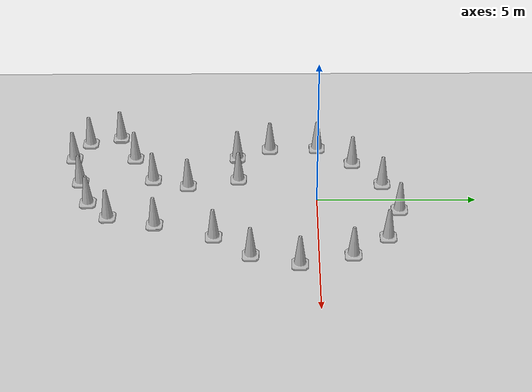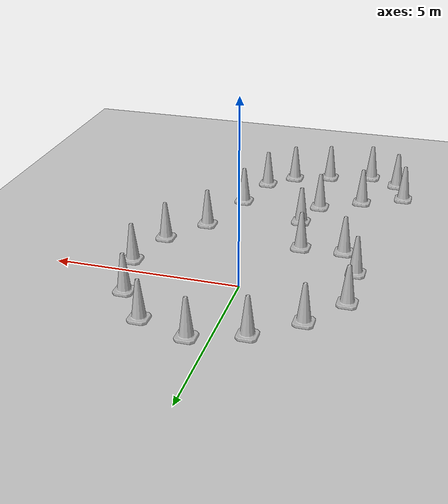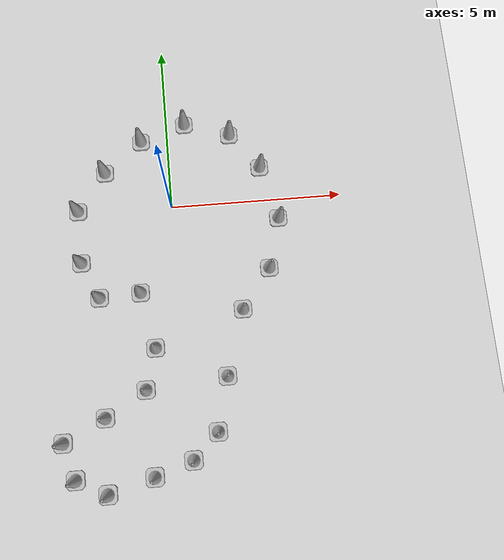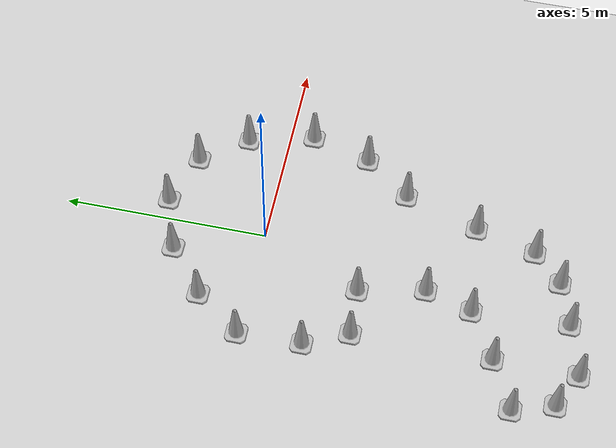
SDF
<sdf version="1.7">
 <world name="default">
  <light name="sun" type="directional">
   <pose>0 0 10 0 -0 0</pose>
   <diffuse>0.8 0.8 0.8 1</diffuse>
   <specular>0.2 0.2 0.2 1</specular>
   <attenuation>
    <range>1000</range>
    <constant>0.9</constant>
    <linear>0.01</linear>
    <quadratic>0.001</quadratic>
   </attenuation>
   <direction>-0.5 0.1 -0.9</direction>
   <spot><inner_angle>0</inner_angle><outer_angle>0</outer_angle><falloff>0</falloff></spot>
  </light>
  <model name="ground_plane">
   <static>1</static>
   <link name="link">
    <collision name="collision">
     <geometry><plane><normal>0 0 1</normal><size>100 100</size></plane></geometry>
     <surface>
      <contact><collide_bitmask>65535</collide_bitmask></contact>
      <friction><ode><mu>100</mu><mu2>50</mu2></ode></friction>
     </surface>
    </collision>
    <visual name="visual">
     <cast_shadows>0</cast_shadows>
     <geometry><plane><normal>0 0 1</normal><size>100 100</size></plane></geometry>
     <material>
      <script><uri>file://media/materials/scripts/gazebo.material</uri><name>Gazebo/Grey</name></script>
     </material>
    </visual>
   </link>
  </model>
  <gravity>0 0 -9.8</gravity>
  <magnetic_field>6e-06 2.3e-05 -4.2e-05</magnetic_field>
  <atmosphere type="adiabatic"/>
  <physics type="ode">
   <max_step_size>0.001</max_step_size>
   <real_time_factor>1</real_time_factor>
   <real_time_update_rate>1000</real_time_update_rate>
  </physics>
  <scene><ambient>0.4 0.4 0.4 1</ambient><background>0.7 0.7 0.7 1</background><shadows>1</shadows></scene>
  <audio><device>default</device></audio>
  <spherical_coordinates>
   <surface_model>EARTH_WGS84</surface_model>
   <latitude_deg>0</latitude_deg>
   <longitude_deg>0</longitude_deg>
   <elevation>0</elevation>
   <heading_deg>0</heading_deg>
  </spherical_coordinates>
  <model name="Construction Cone">
   <link name="link">
    <collision name="collision">
     <geometry>
      <mesh><scale>10 10 10</scale><uri>model://construction_cone/meshes/construction_cone.dae</uri></mesh>
     </geometry>
    </collision>
    <visual name="visual">
     <geometry>
      <mesh><scale>10 10 10</scale><uri>model://construction_cone/meshes/construction_cone.dae</uri></mesh>
     </geometry>
    </visual>
    <inertial>
     <inertia><ixx>1</ixx><ixy>0</ixy><ixz>0</ixz><iyy>1</iyy><iyz>0</iyz><izz>1</izz></inertia>
     <mass>1</mass>
    </inertial>
   </link>
   <pose>-1.92235 1.20401 -0 -0 -0 -0</pose>
  </model>
  <model name="Construction Cone_clone">
   <link name="link">
    <collision name="collision">
     <geometry>
      <mesh><scale>10 10 10</scale><uri>model://construction_cone/meshes/construction_cone.dae</uri></mesh>
     </geometry>
    </collision>
    <visual name="visual">
     <geometry>
      <mesh><scale>10 10 10</scale><uri>model://construction_cone/meshes/construction_cone.dae</uri></mesh>
     </geometry>
    </visual>
    <inertial>
     <inertia><ixx>1</ixx><ixy>0</ixy><ixz>0</ixz><iyy>1</iyy><iyz>0</iyz><izz>1</izz></inertia>
     <mass>1</mass>
    </inertial>
   </link>
   <pose>-0.792785 2.10959 -0 0 -0 0</pose>
  </model>
  <model name="Construction Cone_clone_0">
   <link name="link">
    <collision name="collision">
     <geometry>
      <mesh><scale>10 10 10</scale><uri>model://construction_cone/meshes/construction_cone.dae</uri></mesh>
     </geometry>
    </collision>
    <visual name="visual">
     <geometry>
      <mesh><scale>10 10 10</scale><uri>model://construction_cone/meshes/construction_cone.dae</uri></mesh>
     </geometry>
    </visual>
    <inertial>
     <inertia><ixx>1</ixx><ixy>0</ixy><ixz>0</ixz><iyy>1</iyy><iyz>0</iyz><izz>1</izz></inertia>
     <mass>1</mass>
    </inertial>
   </link>
   <pose>0.538952 2.55836 -0 0 -0 0</pose>
  </model>
  <model name="Construction Cone_clone_1">
   <link name="link">
    <collision name="collision">
     <geometry>
      <mesh><scale>10 10 10</scale><uri>model://construction_cone/meshes/construction_cone.dae</uri></mesh>
     </geometry>
    </collision>
    <visual name="visual">
     <geometry>
      <mesh><scale>10 10 10</scale><uri>model://construction_cone/meshes/construction_cone.dae</uri></mesh>
     </geometry>
    </visual>
    <inertial>
     <inertia><ixx>1</ixx><ixy>0</ixy><ixz>0</ixz><iyy>1</iyy><iyz>0</iyz><izz>1</izz></inertia>
     <mass>1</mass>
    </inertial>
   </link>
   <pose>1.87174 2.11787 -0 0 -1e-06 0</pose>
  </model>
  <model name="Construction Cone_clone_2">
   <link name="link">
    <collision name="collision">
     <geometry>
      <mesh><scale>10 10 10</scale><uri>model://construction_cone/meshes/construction_cone.dae</uri></mesh>
     </geometry>
    </collision>
    <visual name="visual">
     <geometry>
      <mesh><scale>10 10 10</scale><uri>model://construction_cone/meshes/construction_cone.dae</uri></mesh>
     </geometry>
    </visual>
    <inertial>
     <inertia><ixx>1</ixx><ixy>0</ixy><ixz>0</ixz><iyy>1</iyy><iyz>0</iyz><izz>1</izz></inertia>
     <mass>1</mass>
    </inertial>
   </link>
   <pose>2.69704 1.01833 -0 0 -1e-06 0</pose>
  </model>
  <model name="Construction Cone_clone_3">
   <link name="link">
    <collision name="collision">
     <geometry>
      <mesh><scale>10 10 10</scale><uri>model://construction_cone/meshes/construction_cone.dae</uri></mesh>
     </geometry>
    </collision>
    <visual name="visual">
     <geometry>
      <mesh><scale>10 10 10</scale><uri>model://construction_cone/meshes/construction_cone.dae</uri></mesh>
     </geometry>
    </visual>
    <inertial>
     <inertia><ixx>1</ixx><ixy>0</ixy><ixz>0</ixz><iyy>1</iyy><iyz>0</iyz><izz>1</izz></inertia>
     <mass>1</mass>
    </inertial>
   </link>
   <pose>3.10695 -0.582766 -0 0 -0 0</pose>
  </model>
  <model name="Construction Cone_clone_4">
   <link name="link">
    <collision name="collision">
     <geometry>
      <mesh><scale>10 10 10</scale><uri>model://construction_cone/meshes/construction_cone.dae</uri></mesh>
     </geometry>
    </collision>
    <visual name="visual">
     <geometry>
      <mesh><scale>10 10 10</scale><uri>model://construction_cone/meshes/construction_cone.dae</uri></mesh>
     </geometry>
    </visual>
    <inertial>
     <inertia><ixx>1</ixx><ixy>0</ixy><ixz>0</ixz><iyy>1</iyy><iyz>0</iyz><izz>1</izz></inertia>
     <mass>1</mass>
    </inertial>
   </link>
   <pose>2.69677 -2.05138 -0 0 -1e-06 0</pose>
  </model>
  <model name="Construction Cone_clone_5">
   <link name="link">
    <collision name="collision">
     <geometry>
      <mesh><scale>10 10 10</scale><uri>model://construction_cone/meshes/construction_cone.dae</uri></mesh>
     </geometry>
    </collision>
    <visual name="visual">
     <geometry>
      <mesh><scale>10 10 10</scale><uri>model://construction_cone/meshes/construction_cone.dae</uri></mesh>
     </geometry>
    </visual>
    <inertial>
     <inertia><ixx>1</ixx><ixy>0</ixy><ixz>0</ixz><iyy>1</iyy><iyz>0</iyz><izz>1</izz></inertia>
     <mass>1</mass>
    </inertial>
   </link>
   <pose>1.83408 -3.18466 -0 0 -0 0</pose>
  </model>
  <model name="Construction Cone_clone_6">
   <link name="link">
    <collision name="collision">
     <geometry>
      <mesh><scale>10 10 10</scale><uri>model://construction_cone/meshes/construction_cone.dae</uri></mesh>
     </geometry>
    </collision>
    <visual name="visual">
     <geometry>
      <mesh><scale>10 10 10</scale><uri>model://construction_cone/meshes/construction_cone.dae</uri></mesh>
     </geometry>
    </visual>
    <inertial>
     <inertia><ixx>1</ixx><ixy>0</ixy><ixz>0</ixz><iyy>1</iyy><iyz>0</iyz><izz>1</izz></inertia>
     <mass>1</mass>
    </inertial>
   </link>
   <pose>-2.76304 0.072382 0 -0 -0 -0</pose>
  </model>
  <model name="Construction Cone_clone_7">
   <link name="link">
    <collision name="collision">
     <geometry>
      <mesh><scale>10 10 10</scale><uri>model://construction_cone/meshes/construction_cone.dae</uri></mesh>
     </geometry>
    </collision>
    <visual name="visual">
     <geometry>
      <mesh><scale>10 10 10</scale><uri>model://construction_cone/meshes/construction_cone.dae</uri></mesh>
     </geometry>
    </visual>
    <inertial>
     <inertia><ixx>1</ixx><ixy>0</ixy><ixz>0</ixz><iyy>1</iyy><iyz>0</iyz><izz>1</izz></inertia>
     <mass>1</mass>
    </inertial>
   </link>
   <pose>-2.72424 -1.48 -1e-05 0 -0 0</pose>
  </model>
  <model name="Construction Cone_clone_8">
   <link name="link">
    <collision name="collision">
     <geometry>
      <mesh><scale>10 10 10</scale><uri>model://construction_cone/meshes/construction_cone.dae</uri></mesh>
     </geometry>
    </collision>
    <visual name="visual">
     <geometry>
      <mesh><scale>10 10 10</scale><uri>model://construction_cone/meshes/construction_cone.dae</uri></mesh>
     </geometry>
    </visual>
    <inertial>
     <inertia><ixx>1</ixx><ixy>0</ixy><ixz>0</ixz><iyy>1</iyy><iyz>0</iyz><izz>1</izz></inertia>
     <mass>1</mass>
    </inertial>
   </link>
   <pose>-1.05898 -2.48409 -0 0 -1e-06 0</pose>
  </model>
  <model name="Construction Cone_clone_9">
   <link name="link">
    <collision name="collision">
     <geometry>
      <mesh><scale>10 10 10</scale><uri>model://construction_cone/meshes/construction_cone.dae</uri></mesh>
     </geometry>
    </collision>
    <visual name="visual">
     <geometry>
      <mesh><scale>10 10 10</scale><uri>model://construction_cone/meshes/construction_cone.dae</uri></mesh>
     </geometry>
    </visual>
    <inertial>
     <inertia><ixx>1</ixx><ixy>0</ixy><ixz>0</ixz><iyy>1</iyy><iyz>0</iyz><izz>1</izz></inertia>
     <mass>1</mass>
    </inertial>
   </link>
   <pose>-2.23994 -2.54128 -1e-05 -0 -0 -0</pose>
  </model>
  <model name="Construction Cone_clone_10">
   <link name="link">
    <collision name="collision">
     <geometry>
      <mesh><scale>10 10 10</scale><uri>model://construction_cone/meshes/construction_cone.dae</uri></mesh>
     </geometry>
    </collision>
    <visual name="visual">
     <geometry>
      <mesh><scale>10 10 10</scale><uri>model://construction_cone/meshes/construction_cone.dae</uri></mesh>
     </geometry>
    </visual>
    <inertial>
     <inertia><ixx>1</ixx><ixy>0</ixy><ixz>0</ixz><iyy>1</iyy><iyz>0</iyz><izz>1</izz></inertia>
     <mass>1</mass>
    </inertial>
   </link>
   <pose>-0.723824 -4.08667 -0 0 -0 0</pose>
  </model>
  <model name="Construction Cone_clone_11">
   <link name="link">
    <collision name="collision">
     <geometry>
      <mesh><scale>10 10 10</scale><uri>model://construction_cone/meshes/construction_cone.dae</uri></mesh>
     </geometry>
    </collision>
    <visual name="visual">
     <geometry>
      <mesh><scale>10 10 10</scale><uri>model://construction_cone/meshes/construction_cone.dae</uri></mesh>
     </geometry>
    </visual>
    <inertial>
     <inertia><ixx>1</ixx><ixy>0</ixy><ixz>0</ixz><iyy>1</iyy><iyz>0</iyz><izz>1</izz></inertia>
     <mass>1</mass>
    </inertial>
   </link>
   <pose>1.24008 -5.02204 0 -0 -0 -0</pose>
  </model>
  <model name="Construction Cone_clone_12">
   <link name="link">
    <collision name="collision">
     <geometry>
      <mesh><scale>10 10 10</scale><uri>model://construction_cone/meshes/construction_cone.dae</uri></mesh>
     </geometry>
    </collision>
    <visual name="visual">
     <geometry>
      <mesh><scale>10 10 10</scale><uri>model://construction_cone/meshes/construction_cone.dae</uri></mesh>
     </geometry>
    </visual>
    <inertial>
     <inertia><ixx>1</ixx><ixy>0</ixy><ixz>0</ixz><iyy>1</iyy><iyz>0</iyz><izz>1</izz></inertia>
     <mass>1</mass>
    </inertial>
   </link>
   <pose>0.856653 -6.50233 -0 0 -1e-06 0</pose>
  </model>
  <model name="Construction Cone_clone_13">
   <link name="link">
    <collision name="collision">
     <geometry>
      <mesh><scale>10 10 10</scale><uri>model://construction_cone/meshes/construction_cone.dae</uri></mesh>
     </geometry>
    </collision>
    <visual name="visual">
     <geometry>
      <mesh><scale>10 10 10</scale><uri>model://construction_cone/meshes/construction_cone.dae</uri></mesh>
     </geometry>
    </visual>
    <inertial>
     <inertia><ixx>1</ixx><ixy>0</ixy><ixz>0</ixz><iyy>1</iyy><iyz>0</iyz><izz>1</izz></inertia>
     <mass>1</mass>
    </inertial>
   </link>
   <pose>-1.05651 -5.22097 -0 0 -0 0</pose>
  </model>
  <model name="Construction Cone_clone_14">
   <link name="link">
    <collision name="collision">
     <geometry>
      <mesh><scale>10 10 10</scale><uri>model://construction_cone/meshes/construction_cone.dae</uri></mesh>
     </geometry>
    </collision>
    <visual name="visual">
     <geometry>
      <mesh><scale>10 10 10</scale><uri>model://construction_cone/meshes/construction_cone.dae</uri></mesh>
     </geometry>
    </visual>
    <inertial>
     <inertia><ixx>1</ixx><ixy>0</ixy><ixz>0</ixz><iyy>1</iyy><iyz>0</iyz><izz>1</izz></inertia>
     <mass>1</mass>
    </inertial>
   </link>
   <pose>-2.21884 -5.89191 -0 1e-06 -0 0</pose>
  </model>
  <model name="Construction Cone_clone_15">
   <link name="link">
    <collision name="collision">
     <geometry>
      <mesh><scale>10 10 10</scale><uri>model://construction_cone/meshes/construction_cone.dae</uri></mesh>
     </geometry>
    </collision>
    <visual name="visual">
     <geometry>
      <mesh><scale>10 10 10</scale><uri>model://construction_cone/meshes/construction_cone.dae</uri></mesh>
     </geometry>
    </visual>
    <inertial>
     <inertia><ixx>1</ixx><ixy>0</ixy><ixz>0</ixz><iyy>1</iyy><iyz>0</iyz><izz>1</izz></inertia>
     <mass>1</mass>
    </inertial>
   </link>
   <pose>0.131735 -7.19513 -0 0 -0 0</pose>
  </model>
  <model name="Construction Cone_clone_16">
   <link name="link">
    <collision name="collision">
     <geometry>
      <mesh><scale>10 10 10</scale><uri>model://construction_cone/meshes/construction_cone.dae</uri></mesh>
     </geometry>
    </collision>
    <visual name="visual">
     <geometry>
      <mesh><scale>10 10 10</scale><uri>model://construction_cone/meshes/construction_cone.dae</uri></mesh>
     </geometry>
    </visual>
    <inertial>
     <inertia><ixx>1</ixx><ixy>0</ixy><ixz>0</ixz><iyy>1</iyy><iyz>0</iyz><izz>1</izz></inertia>
     <mass>1</mass>
    </inertial>
   </link>
   <pose>-0.945353 -7.54852 -0 0 -0 0</pose>
  </model>
  <model name="Construction Cone_clone_17">
   <link name="link">
    <collision name="collision">
     <geometry>
      <mesh><scale>10 10 10</scale><uri>model://construction_cone/meshes/construction_cone.dae</uri></mesh>
     </geometry>
    </collision>
    <visual name="visual">
     <geometry>
      <mesh><scale>10 10 10</scale><uri>model://construction_cone/meshes/construction_cone.dae</uri></mesh>
     </geometry>
    </visual>
    <inertial>
     <inertia><ixx>1</ixx><ixy>0</ixy><ixz>0</ixz><iyy>1</iyy><iyz>0</iyz><izz>1</izz></inertia>
     <mass>1</mass>
    </inertial>
   </link>
   <pose>-2.22978 -7.89471 -0 0 -1e-06 0</pose>
  </model>
  <model name="Construction Cone_clone_18">
   <link name="link">
    <collision name="collision">
     <geometry>
      <mesh><scale>10 10 10</scale><uri>model://construction_cone/meshes/construction_cone.dae</uri></mesh>
     </geometry>
    </collision>
    <visual name="visual">
     <geometry>
      <mesh><scale>10 10 10</scale><uri>model://construction_cone/meshes/construction_cone.dae</uri></mesh>
     </geometry>
    </visual>
    <inertial>
     <inertia><ixx>1</ixx><ixy>0</ixy><ixz>0</ixz><iyy>1</iyy><iyz>0</iyz><izz>1</izz></inertia>
     <mass>1</mass>
    </inertial>
   </link>
   <pose>-3.08953 -7.45747 0 -0 -0 -0</pose>
  </model>
  <model name="Construction Cone_clone_19">
   <link name="link">
    <collision name="collision">
     <geometry>
      <mesh><scale>10 10 10</scale><uri>model://construction_cone/meshes/construction_cone.dae</uri></mesh>
     </geometry>
    </collision>
    <visual name="visual">
     <geometry>
      <mesh><scale>10 10 10</scale><uri>model://construction_cone/meshes/construction_cone.dae</uri></mesh>
     </geometry>
    </visual>
    <inertial>
     <inertia><ixx>1</ixx><ixy>0</ixy><ixz>0</ixz><iyy>1</iyy><iyz>0</iyz><izz>1</izz></inertia>
     <mass>1</mass>
    </inertial>
   </link>
   <pose>-3.40553 -6.46875 0 -0 -0 -0</pose>
  </model>
 </world>
</sdf>
